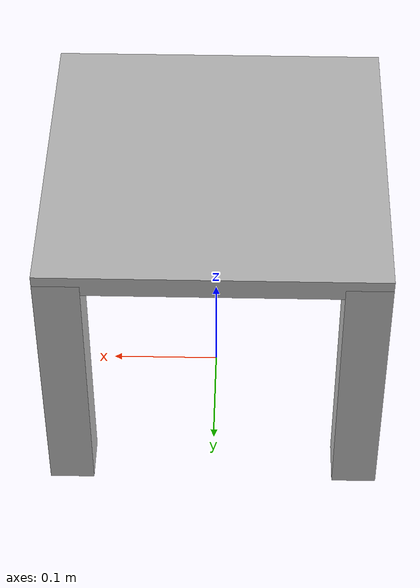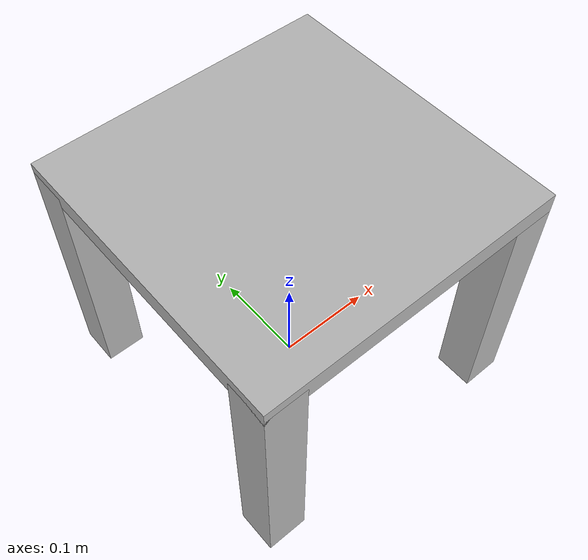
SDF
<?xml version="1.0"?>
<sdf version="1.7" xmlns:drake="drake.mit.edu">
  <model name="stand">
    <link name="stand_body">
      <!-- Tabletop -->
      <visual name="top">
        <pose>0 0 0.25 0 0 0</pose> <!-- top surface at z = 0.25 -->
        <geometry>
          <box>
            <size>0.3 0.3 0.02</size> <!-- 30cm square, 2cm thick -->
          </box>
        </geometry>
      </visual>
      <collision name="top">
        <pose>0 0 0.25 0 0 0</pose>
        <geometry>
          <box>
            <size>0.3 0.3 0.02</size>
          </box>
        </geometry>
        <drake:proximity_properties>
          <drake:rigid_hydroelastic/>
          <drake:mesh_resolution_hint>0.05</drake:mesh_resolution_hint>
          <drake:mu_dynamic>1.0</drake:mu_dynamic>
          <drake:mu_static>1.0</drake:mu_static>
        </drake:proximity_properties>
      </collision>

      <!-- Four legs -->
      <visual name="leg1">
        <pose>0.13 0.13 0.125 0 0 0</pose>
        <geometry>
          <box>
            <size>0.04 0.04 0.25</size> <!-- 25cm tall -->
          </box>
        </geometry>
      </visual>
      <collision name="leg1">
        <pose>0.13 0.13 0.125 0 0 0</pose>
        <geometry>
          <box>
            <size>0.04 0.04 0.25</size>
          </box>
        </geometry>
      </collision>

      <visual name="leg2">
        <pose>-0.13 0.13 0.125 0 0 0</pose>
        <geometry>
          <box>
            <size>0.04 0.04 0.25</size>
          </box>
        </geometry>
      </visual>
      <collision name="leg2">
        <pose>-0.13 0.13 0.125 0 0 0</pose>
        <geometry>
          <box>
            <size>0.04 0.04 0.25</size>
          </box>
        </geometry>
      </collision>

      <visual name="leg3">
        <pose>0.13 -0.13 0.125 0 0 0</pose>
        <geometry>
          <box>
            <size>0.04 0.04 0.25</size>
          </box>
        </geometry>
      </visual>
      <collision name="leg3">
        <pose>0.13 -0.13 0.125 0 0 0</pose>
        <geometry>
          <box>
            <size>0.04 0.04 0.25</size>
          </box>
        </geometry>
      </collision>

      <visual name="leg4">
        <pose>-0.13 -0.13 0.125 0 0 0</pose>
        <geometry>
          <box>
            <size>0.04 0.04 0.25</size>
          </box>
        </geometry>
      </visual>
      <collision name="leg4">
        <pose>-0.13 -0.13 0.125 0 0 0</pose>
        <geometry>
          <box>
            <size>0.04 0.04 0.25</size>
          </box>
        </geometry>
      </collision>
    </link>
  </model>
</sdf>
